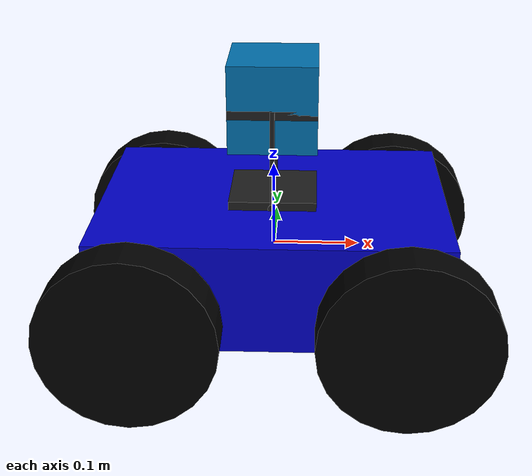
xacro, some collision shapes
<?xml version="1.0"?>
<robot xmlns:xacro="http://www.ros.org/wiki/xacro" name="buggy_with_tilt_unit">
  <property name="PI" value="3.1415926535897931" />
  <xacro:include filename="$(find buggy_description)/urdf/buggy_model.xacro"/>
  <xacro:include filename="$(find tilting_unit_description)/urdf/tilting_unit.xacro"/>

  <joint name="tilt_base_link_base_link_joint" type="fixed">
    <parent link="base_link"/>
    <child link="tilt_base_link"/>
    <origin rpy="0 0 0" xyz="0 0 ${base_hight/2 + tilt_base_hight/2}"/>
  </joint>

  <gazebo>
    <plugin name="tilting_unit_controller" filename="libtilting_unit_gazebo_plugin.so">
      <joint_states_topic_name>joint_states</joint_states_topic_name>
      <tilting_unit_joint>rot_elem_joint</tilting_unit_joint>
          <theta_max>${PI/6}</theta_max>
          <theta_min>${-PI/4}</theta_min>
      <period>2.0</period>
    </plugin>
  </gazebo>

</robot>

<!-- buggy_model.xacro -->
<robot xmlns:xacro="http://www.ros.org/wiki/xacro">

	<xacro:property name="rob_name" value="buggy" />

	<xacro:property name="base_mass" value="7.0"/>
	<xacro:property name="base_hight" value="0.125"/>
	<xacro:property name="base_width" value="0.3"/>
	<xacro:property name="base_length" value="0.4"/>
	<xacro:property name="base_Ix" value="${base_mass*(base_hight*base_hight+base_width*base_width)/12}"/>
	<xacro:property name="base_Iy" value="${base_mass*(base_length*base_length+base_hight*base_hight)/12}"/>
	<xacro:property name="base_Iz" value="${base_mass*(base_length*base_length+base_width*base_width)/12}"/>

	<xacro:property name="wheel_radius" value="0.1"/>
	<xacro:property name="wheel_length" value="0.05"/>
	<xacro:property name="wheel_mass" value="0.5"/>
	<xacro:property name="wheel_Iz" value="${wheel_mass*wheel_radius*wheel_radius/2}"/>
	<xacro:property name="wheel_Ix" value="${wheel_mass*(3*wheel_radius*wheel_radius+wheel_length*wheel_length)/12}"/>

	<!-- base of robot-->
	<xacro:macro name="base_link">
		<link name="base_link">
			<visual>
				<geometry>
					<box size="${base_length} ${base_width} ${base_hight}"/>
				</geometry>
				<material name="blue">
					<color rgba="0 0 .8 1"/>
				</material>
			</visual>
			<collision>
				<geometry>
					<box size="${base_length} ${base_width} ${base_hight}"/>
				</geometry>
			</collision>
			<inertial>
				<mass value="${base_mass}"/>
				<inertia ixx="${wheel_Ix}" ixy="0.0" ixz="0.0" iyy="${base_Iy}" iyz="0.0" izz="${base_Iz}"/>
			</inertial>
		</link>
		<gazebo reference="base_link">
			<turnGravityOff>false</turnGravityOff>
		</gazebo>

	</xacro:macro>
	<xacro:base_link/>

	<!--wheels-->

	<xacro:macro name="wheel" params="prefix xyz_offsets lr">
		<link name="${prefix}_wheel">
			<visual>
				<origin xyz="0 0 0" rpy="${PI/2} 0 0" />
				<geometry>
					<cylinder length="${wheel_length}" radius="${wheel_radius}"/>
				</geometry>
				<material name="black">
					<color rgba="0 0 0 1"/>
				</material>
			</visual>
			<collision>
				<origin xyz="0 0 0" rpy="${PI/2} 0 0" />
				<geometry>
					<cylinder length="${wheel_length}" radius="${wheel_radius}"/>
				</geometry>
			</collision>
			<inertial>
				<mass value="${wheel_mass}"/>
				<inertia ixx="${wheel_Ix}" ixy="0.0" ixz="0.0" iyy="${wheel_Ix}" iyz="0.0" izz="${wheel_Iz}"/>
			</inertial>
		</link>

		<joint name="${prefix}_wheel_joint" type="continuous">
			<axis xyz="0 1 0"/>
			<parent link="base_link"/>
			<child link="${prefix}_wheel"/>
			<origin rpy="0 0 0" xyz="${xyz_offsets}"/>
			<limit effort="100" velocity="100"/>
			<joint_properties damping="0.0" friction="0.0"/>
		</joint>

		<gazebo reference="${prefix}_wheel">
 			<mu1 value="1" />
  			<mu2 value="1" />
  			<fdir1 value="0 0 1"/>
  			<turnGravityOff>false</turnGravityOff>
		</gazebo>
	</xacro:macro>

	<xacro:property name="wheel_x_sep" value="${base_length/4+0.05}"/>

	<xacro:wheel prefix="right_front" xyz_offsets="${wheel_x_sep} -${(base_width+wheel_length)/2} -${base_hight/4}" lr="1"/>

	<xacro:wheel prefix="right_rear" xyz_offsets="-${wheel_x_sep} -${(base_width+wheel_length)/2} -${base_hight/4}" lr="1"/>

	<xacro:wheel prefix="left_front" xyz_offsets="${wheel_x_sep} ${(base_width+wheel_length)/2} -${base_hight/4}" lr="0"/>

	<xacro:wheel prefix="left_rear" xyz_offsets="-${wheel_x_sep} ${(base_width+wheel_length)/2} -${base_hight/4}" lr="0"/>

	<gazebo reference="base_link">
		<material>Gazebo/Blue</material>
	</gazebo>
	<gazebo reference="right_front_wheel">
		<material>Gazebo/FlatBlack</material>
	</gazebo>
	<gazebo reference="right_rear_wheel">
		<material>Gazebo/FlatBlack</material>
	</gazebo>
	<gazebo reference="left_front_wheel">
		<material>Gazebo/FlatBlack</material>
	</gazebo>
	<gazebo reference="left_rear_wheel">
		<material>Gazebo/FlatBlack</material>
	</gazebo>

	<joint name="imu_joint" type="fixed">
    	<axis xyz="0 0 0"/>
    	<origin xyz="0.0 0.0 0.0"/>
    	<parent link="base_link"/>
    	<child link="imu_link"/>
 	</joint>

 	<link name="imu_link">
 		<inertial>
 			<mass value="0.001"/>
 			<origin rpy="0.0 0.0 0.0" xyz="0.0 0.0 0.0"/>
 			<inertia ixx="0.0001" ixy="0" ixz="0" iyy="0.000001" iyz="0" izz="0.0001"/>
 		</inertial>
 		<collision>
 			<origin rpy="0 0 0" xyz="0 0 0"/>
 			<geometry>
 				<box size=".001 .001 .001"/>
 			</geometry>
 		</collision>
 	</link>

 	<gazebo>
 		<plugin filename="libgazebo_ros_imu.so" name="imu_en_ros">
 			<alwaysOn>true</alwaysOn>
 			<updateRate>100.0</updateRate>
 			<bodyName>imu_link</bodyName>
 			<topicName>imu_data</topicName>
 			<gaussianNoise>2.89e-08</gaussianNoise>
 			<xyzOffset>0.0 0.0 0.0</xyzOffset>
 			<rpyOffset>0.0 0.0 0.0</rpyOffset>
 		</plugin>
 		<turnGravityOff>false</turnGravityOff>
 	</gazebo>

	<gazebo>
		<plugin name="robot_controller" filename="libdiff_drive_gazebo_plugin.so">
			<cmd_vel_topic_name>cmd_vel</cmd_vel_topic_name>
			<odom_topic_name>odom</odom_topic_name>
			<joint_states_topic_name>joint_states</joint_states_topic_name>
			<left_wheel_0>left_front_wheel_joint</left_wheel_0>
			<left_wheel_1>left_rear_wheel_joint</left_wheel_1>
			<right_wheel_2>right_front_wheel_joint</right_wheel_2>
			<right_wheel_3>right_rear_wheel_joint</right_wheel_3>
			<wheel_separation>${base_width + wheel_length}</wheel_separation>
			<wheel_radius>0.1</wheel_radius>
			<torque>10.0</torque>
			<num_joints>4</num_joints>

		</plugin>
	</gazebo>

</robot>

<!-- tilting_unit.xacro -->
<robot xmlns:xacro="http://www.ros.org/wiki/xacro">
	<!--tilting unit-->

	<xacro:macro name="box_link" params="link_name hight width length mass">
		<link name="${link_name}">
			<visual>
				<geometry>
					<box size="${length} ${width} ${hight}"/>
				</geometry>
			</visual>
			<collision>
				<geometry>
					<box size="${length} ${width} ${hight}"/>
				</geometry>
			</collision>
			<inertial>
				<mass value="${mass}"/>
				<inertia ixx="${mass*(hight*hight+width*width)/12}" ixy="0.0" ixz="0.0" iyy="${mass*(length*length+hight*hight)/12}" iyz="0.0" izz="${mass*(length*length+width*width)/12}"/>
			</inertial>
		</link>
	</xacro:macro>

	<xacro:macro name="cylinder_link" params="link_name radius length mass">
		<link name="${link_name}">
			<visual>
				<origin xyz="0 0 0" rpy="${PI/2} 0 0" />
				<geometry>
					<cylinder length="${length}" radius="${radius}"/>
				</geometry>
			</visual>
			<inertial>
				<mass value="${mass}"/>
				<inertia ixx="${mass*(3*radius*radius+length*length)/12}" ixy="0.0" ixz="0.0" iyy="${mass*(3*radius*radius+length*length)/12}" iyz="0.0" izz="${mass*radius*radius/2}"/>
			</inertial>
		</link>
	</xacro:macro>

	<xacro:property name="tilt_base_mass" value="0.02"/>
	<xacro:property name="tilt_base_hight" value="0.01"/>
	<xacro:property name="tilt_base_width" value="0.1"/>
	<xacro:property name="tilt_base_length" value="0.1"/>

	<xacro:box_link link_name="tilt_base_link" hight="${tilt_base_hight}" width="${tilt_base_width}" length="${tilt_base_length}" mass="${tilt_base_mass}"/>

	<xacro:property name="plr_mass" value="1e-5"/>
	<xacro:property name="plr_radius" value="0.005"/>
	<xacro:property name="plr_length" value="0.001"/>

	<xacro:property name="pillar_mass" value="1e-5"/>
	<xacro:property name="pillar_hight" value="0.11"/>
	<xacro:property name="pillar_length" value="0.005"/>
	<xacro:property name="pillar_width" value="${plr_length}"/>

	<xacro:box_link link_name="pillar_1_link" hight="${pillar_hight}" width="${pillar_width}" length="${pillar_length}" mass="${pillar_mass}"/>

	<xacro:box_link link_name="pillar_2_link" hight="${pillar_hight}" width="${pillar_width}" length="${pillar_length}" mass="${pillar_mass}"/>

	<xacro:cylinder_link link_name="plr_1_link" radius="${plr_radius}" length="${plr_length}" mass="${plr_mass}"/>

	<xacro:cylinder_link link_name="plr_2_link" radius="${plr_radius}" length="${plr_length}" mass="${plr_mass}"/>

	<joint name="pillar_1_joint" type="fixed">
			<parent link="plr_1_link"/>
			<child link="pillar_1_link"/>
			<origin rpy="0 0 0" xyz="0 0 ${pillar_hight/2 + plr_radius}"/>
	</joint>

	<joint name="pillar_2_joint" type="fixed">
			<parent link="plr_2_link"/>
			<child link="pillar_2_link"/>
			<origin rpy="0 0 0" xyz="0 0 ${pillar_hight/2 + plr_radius}"/>
	</joint>

	<joint name="pillar_1_link_joint" type="fixed">
		<parent link="tilt_base_link"/>
		<child link="plr_1_link"/>
		<origin rpy="0 0 0" xyz="0 -${plr_length/2 + tilt_base_width/2} -${plr_radius/2}"/>
	</joint>

	<joint name="pillar_2_link_joint" type="fixed">
		<parent link="tilt_base_link"/>
		<child link="plr_2_link"/>
		<origin rpy="0 0 0" xyz="0 ${plr_length/2 + tilt_base_width/2} -${plr_radius/2}"/>
	</joint>

	<xacro:box_link link_name="rot_elem_link" hight="${tilt_base_hight}" width="${tilt_base_width}" length="${tilt_base_length}" mass="${tilt_base_mass}"/>

	<joint name="rot_elem_joint" type="continuous">
			<axis xyz="0 1 0"/>
			<parent link="pillar_1_link"/>
			<child link="rot_elem_link"/>
			<origin rpy="0 0 0" xyz="0  ${tilt_base_width/2 + plr_length/2} ${pillar_hight/2 - tilt_base_hight/2}"/>
			<limit effort="100" velocity="100"/>
			<joint_properties damping="0.0" friction="0.0"/>
	</joint>

	<gazebo reference="tilt_base_link">
		<material>Gazebo/FlatBlack</material>
	</gazebo>
	<gazebo reference="rot_elem_link">
		<material>Gazebo/FlatBlack</material>
	</gazebo>
	<gazebo reference="pillar_1_link">
		<material>Gazebo/FlatBlack</material>
	</gazebo>
	<gazebo reference="pillar_2_link">
		<material>Gazebo/FlatBlack</material>
	</gazebo>
	<gazebo reference="plr_1_link">
		<material>Gazebo/FlatBlack</material>
	</gazebo>
	<gazebo reference="plr_2_link">
		<material>Gazebo/FlatBlack</material>
	</gazebo>

	<!-- Hokuyo Laser -->
	<joint name="hokuyo_joint" type="fixed">
		<origin xyz="0 0 ${tilt_base_hight/2}" rpy="0 0 0"/>
		<parent link="rot_elem_link"/>
		<child link="hokuyo_link"/>
	</joint>

	<link name="hokuyo_link">
		<collision>
			<geometry>
				<box size="0.1 0.1 0.1"/>
			</geometry>
		</collision>
		<visual>
			<geometry>
				<mesh filename="package://tilting_unit_description/meshes/hokuyo.dae"/>
			</geometry>
		</visual>
		<inertial>
			<mass value="1e-5" />
			<inertia ixx="1e-6" ixy="0" ixz="0" iyy="1e-6" iyz="0" izz="1e-6" />
		</inertial>
	</link>

	<gazebo reference="hokuyo_link">
		<sensor name="head_hokuyo_sensor" type="ray">
			<visualize>false</visualize>
			<update_rate>40</update_rate>
			<ray>
				<scan>
					<horizontal>
						<samples>720</samples>
						<resolution>1</resolution>
						<min_angle>-1.570796</min_angle>
						<max_angle>1.570796</max_angle>
					</horizontal>
				</scan>
				<range>
					<min>0.10</min>
					<max>30.0</max>
					<resolution>0.01</resolution>
				</range>
				<noise>
					<type>gaussian</type>
					<mean>0.0</mean>
					<stddev>0.01</stddev>
				</noise>
			</ray>
			<plugin filename="libgazebo_ros_laser.so" name="gazebo_ros_head_hokuyo_controller">
				<topicName>/gazebo/laser_scan</topicName>
				<frameName>hokuyo_link</frameName>
			</plugin>
		</sensor>
		<turnGravityOff>false</turnGravityOff>
	</gazebo>

</robot>
